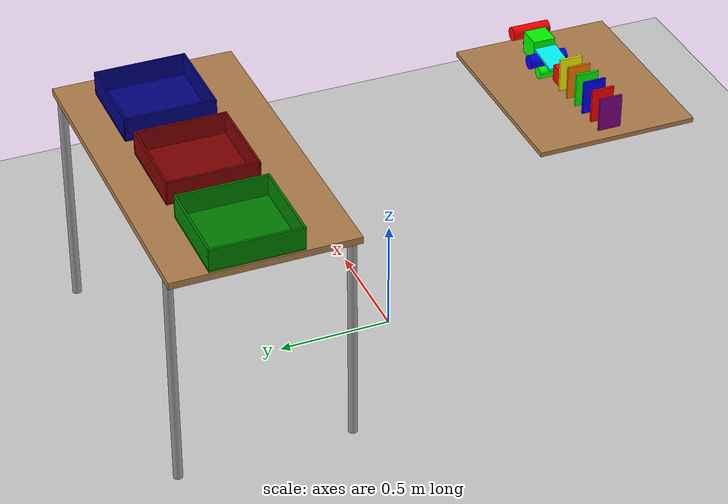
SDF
<sdf version="1.7">
 <world name="default">
  <light name="sun" type="directional">
   <pose>0 0 10 0 -0 0</pose>
   <diffuse>0.8 0.8 0.8 1</diffuse>
   <specular>0.2 0.2 0.2 1</specular>
   <attenuation>
    <range>1000</range>
    <constant>0.9</constant>
    <linear>0.01</linear>
    <quadratic>0.001</quadratic>
   </attenuation>
   <direction>-0.5 0.1 -0.9</direction>
   <spot><inner_angle>0</inner_angle><outer_angle>0</outer_angle><falloff>0</falloff></spot>
  </light>
  <model name="ground_plane">
   <static>1</static>
   <link name="link">
    <collision name="collision">
     <geometry><plane><normal>0 0 1</normal><size>100 100</size></plane></geometry>
     <surface><friction><ode><mu>100</mu><mu2>50</mu2></ode></friction></surface>
    </collision>
    <visual name="visual">
     <cast_shadows>0</cast_shadows>
     <geometry><plane><normal>0 0 1</normal><size>100 100</size></plane></geometry>
     <material>
      <script><uri>file://media/materials/scripts/gazebo.material</uri><name>Gazebo/Grey</name></script>
     </material>
    </visual>
   </link>
  </model>
  <gravity>0 0 -9.8</gravity>
  <magnetic_field>6e-06 2.3e-05 -4.2e-05</magnetic_field>
  <atmosphere type="adiabatic"/>
  <physics type="ode">
   <max_step_size>0.001</max_step_size>
   <real_time_factor>1</real_time_factor>
   <real_time_update_rate>1000</real_time_update_rate>
  </physics>
  <scene><ambient>0.4 0.4 0.4 1</ambient><background>0.7 0.7 0.7 1</background><shadows>1</shadows></scene>
  <audio><device>default</device></audio>
  <spherical_coordinates>
   <surface_model>EARTH_WGS84</surface_model>
   <latitude_deg>0</latitude_deg>
   <longitude_deg>0</longitude_deg>
   <elevation>0</elevation>
   <heading_deg>0</heading_deg>
  </spherical_coordinates>
  <model name="table">
   <static>1</static>
   <link name="link">
    <collision name="surface">
     <pose>0 0 1 0 -0 0</pose>
     <geometry><box><size>1.5 0.8 0.03</size></box></geometry>
     <surface>
      <friction><ode><mu>10</mu><mu2>5</mu2></ode></friction>
      <contact><ode><soft_cfm>0.0001</soft_cfm><soft_erp>0.4</soft_erp><kp>1e+06</kp><kd>10</kd></ode></contact>
     </surface>
    </collision>
    <visual name="visual1">
     <pose>0 0 1 0 -0 0</pose>
     <geometry><box><size>1.5 0.8 0.03</size></box></geometry>
     <material>
      <script><uri>file://media/materials/scripts/gazebo.material</uri><name>Gazebo/Wood</name></script>
     </material>
    </visual>
    <collision name="front_left_leg">
     <pose>0.68 0.38 0.5 0 -0 0</pose>
     <geometry><cylinder><radius>0.02</radius><length>1</length></cylinder></geometry>
    </collision>
    <visual name="front_left_leg">
     <pose>0.68 0.38 0.5 0 -0 0</pose>
     <geometry><cylinder><radius>0.02</radius><length>1</length></cylinder></geometry>
     <material>
      <script><uri>file://media/materials/scripts/gazebo.material</uri><name>Gazebo/Grey</name></script>
     </material>
    </visual>
    <collision name="front_right_leg">
     <pose>0.68 -0.38 0.5 0 -0 0</pose>
     <geometry><cylinder><radius>0.02</radius><length>1</length></cylinder></geometry>
    </collision>
    <visual name="front_right_leg">
     <pose>0.68 -0.38 0.5 0 -0 0</pose>
     <geometry><cylinder><radius>0.02</radius><length>1</length></cylinder></geometry>
     <material>
      <script><uri>file://media/materials/scripts/gazebo.material</uri><name>Gazebo/Grey</name></script>
     </material>
    </visual>
    <collision name="back_right_leg">
     <pose>-0.68 -0.38 0.5 0 -0 0</pose>
     <geometry><cylinder><radius>0.02</radius><length>1</length></cylinder></geometry>
    </collision>
    <visual name="back_right_leg">
     <pose>-0.68 -0.38 0.5 0 -0 0</pose>
     <geometry><cylinder><radius>0.02</radius><length>1</length></cylinder></geometry>
     <material>
      <script><uri>file://media/materials/scripts/gazebo.material</uri><name>Gazebo/Grey</name></script>
     </material>
    </visual>
    <collision name="back_left_leg">
     <pose>-0.68 0.38 0.5 0 -0 0</pose>
     <geometry><cylinder><radius>0.02</radius><length>1</length></cylinder></geometry>
    </collision>
    <visual name="back_left_leg">
     <pose>-0.68 0.38 0.5 0 -0 0</pose>
     <geometry><cylinder><radius>0.02</radius><length>1</length></cylinder></geometry>
     <material>
      <script><uri>file://media/materials/scripts/gazebo.material</uri><name>Gazebo/Grey</name></script>
     </material>
    </visual>
    <inertial>
     <inertia><ixx>1</ixx><ixy>0</ixy><ixz>0</ixz><iyy>1</iyy><iyz>0</iyz><izz>1</izz></inertia>
     <mass>50</mass>
    </inertial>
   </link>
   <pose>0.056083 0.801191 -1.2e-05 0 -0 2.5e-05</pose>
  </model>
  <plugin name="gazebo_link_attacher" filename="libgazebo_link_attacher.so"/>
  <plugin name="gazebo_ros_state" filename="libgazebo_ros_state.so">
   <namespace>/gazebo</namespace>
   <update_rate>100</update_rate>
  </plugin>
  <model name="cube_b">
   <link name="link_2">
    <inertial>
     <mass>2</mass>
     <inertia>
      <ixx>0.00083333</ixx>
      <ixy>0</ixy>
      <ixz>0</ixz>
      <iyy>0.00083333</iyy>
      <iyz>0</iyz>
      <izz>0.00083333</izz>
     </inertia>
    </inertial>
    <visual name="visual">
     <geometry><box><size>0.05 0.05 0.05</size></box></geometry>
     <material>
      <lighting>1</lighting>
      <script><uri>file://media/materials/scripts/gazebo.material</uri><name>Gazebo/Grey</name></script>
      <ambient>0 0 1 1</ambient>
      <diffuse>0 0 1 1</diffuse>
      <specular>0 0 0 1</specular>
      <emissive>0 0 0 1</emissive>
      <shader type="vertex"><normal_map>__default__</normal_map></shader>
     </material>
    </visual>
    <collision name="collision">
     <geometry><box><size>0.05 0.05 0.05</size></box></geometry>
     <surface>
      <friction>
       <ode><mu>0.8</mu><mu2>0.8</mu2><fdir1>0 0 0</fdir1><slip1>0</slip1><slip2>0</slip2></ode>
       <torsional>
        <coefficient>1</coefficient>
        <patch_radius>0</patch_radius>
        <surface_radius>0</surface_radius>
        <use_patch_radius>1</use_patch_radius>
        <ode><slip>0</slip></ode>
       </torsional>
      </friction>
      <bounce><restitution_coefficient>0</restitution_coefficient><threshold>1e+06</threshold></bounce>
      <contact>
       <collide_without_contact>0</collide_without_contact>
       <collide_without_contact_bitmask>1</collide_without_contact_bitmask>
       <collide_bitmask>1</collide_bitmask>
       <ode>
        <soft_cfm>0.0001</soft_cfm>
        <soft_erp>0.4</soft_erp>
        <kp>1e+06</kp>
        <kd>10</kd>
        <max_vel>0.01</max_vel>
        <min_depth>0</min_depth>
       </ode>
      </contact>
     </surface>
    </collision>
   </link>
   <static>0</static>
   <allow_auto_disable>0</allow_auto_disable>
   <pose>0.388328 -0.828649 1.01222 -1.56966 -0.004146 -0.004924</pose>
  </model>
  <model name="cube_g">
   <link name="link_2">
    <inertial>
     <mass>2</mass>
     <inertia>
      <ixx>0.00333333</ixx>
      <iyy>0.00333333</iyy>
      <izz>0.00333333</izz>
      <ixy>0</ixy>
      <ixz>0</ixz>
      <iyz>0</iyz>
     </inertia>
    </inertial>
    <visual name="visual">
     <geometry><box><size>0.1 0.1 0.1</size></box></geometry>
     <material>
      <lighting>1</lighting>
      <script><uri>file://media/materials/scripts/gazebo.material</uri><name>Gazebo/Grey</name></script>
      <ambient>0 1 0 1</ambient>
      <diffuse>0 1 0 1</diffuse>
      <specular>0 0 0 1</specular>
      <emissive>0 0 0 1</emissive>
      <shader type="vertex"><normal_map>__default__</normal_map></shader>
     </material>
    </visual>
    <collision name="collision">
     <geometry><box><size>0.1 0.1 0.1</size></box></geometry>
     <surface>
      <friction>
       <ode><mu>0.8</mu><mu2>0.8</mu2><fdir1>0 0 0</fdir1><slip1>0</slip1><slip2>0</slip2></ode>
       <torsional>
        <coefficient>1</coefficient>
        <patch_radius>0</patch_radius>
        <surface_radius>0</surface_radius>
        <use_patch_radius>1</use_patch_radius>
        <ode><slip>0</slip></ode>
       </torsional>
      </friction>
      <bounce><restitution_coefficient>0</restitution_coefficient><threshold>1e+06</threshold></bounce>
      <contact>
       <collide_without_contact>0</collide_without_contact>
       <collide_without_contact_bitmask>1</collide_without_contact_bitmask>
       <collide_bitmask>1</collide_bitmask>
       <ode>
        <soft_cfm>0.0001</soft_cfm>
        <soft_erp>0.4</soft_erp>
        <kp>1e+06</kp>
        <kd>10</kd>
        <max_vel>0.01</max_vel>
        <min_depth>0</min_depth>
       </ode>
      </contact>
     </surface>
    </collision>
   </link>
   <static>0</static>
   <allow_auto_disable>0</allow_auto_disable>
   <pose>0.312618 -0.829662 1.0369 0.001136 -0.004152 -0.00246</pose>
  </model>
  <model name="cube_r">
   <link name="link_2">
    <inertial>
     <mass>2</mass>
     <inertia>
      <ixx>0.001875</ixx>
      <ixy>0</ixy>
      <ixz>0</ixz>
      <iyy>0.001875</iyy>
      <iyz>0</iyz>
      <izz>0.001875</izz>
     </inertia>
    </inertial>
    <visual name="visual">
     <geometry><box><size>0.075 0.075 0.075</size></box></geometry>
     <material>
      <lighting>1</lighting>
      <script><uri>file://media/materials/scripts/gazebo.material</uri><name>Gazebo/Grey</name></script>
      <ambient>1 0 0 1</ambient>
      <diffuse>1 0 0 1</diffuse>
      <specular>0 0 0 1</specular>
      <emissive>0 0 0 1</emissive>
      <shader type="vertex"><normal_map>__default__</normal_map></shader>
     </material>
    </visual>
    <collision name="collision">
     <geometry><box><size>0.075 0.075 0.075</size></box></geometry>
     <surface>
      <friction>
       <ode><mu>0.8</mu><mu2>0.8</mu2><fdir1>0 0 0</fdir1><slip1>0</slip1><slip2>0</slip2></ode>
       <torsional>
        <coefficient>1</coefficient>
        <patch_radius>0</patch_radius>
        <surface_radius>0</surface_radius>
        <use_patch_radius>1</use_patch_radius>
        <ode><slip>0</slip></ode>
       </torsional>
      </friction>
      <bounce><restitution_coefficient>0</restitution_coefficient><threshold>1e+06</threshold></bounce>
      <contact>
       <collide_without_contact>0</collide_without_contact>
       <collide_without_contact_bitmask>1</collide_without_contact_bitmask>
       <collide_bitmask>1</collide_bitmask>
       <ode>
        <soft_cfm>0.0001</soft_cfm>
        <soft_erp>0.4</soft_erp>
        <kp>1e+06</kp>
        <kd>10</kd>
        <max_vel>0.01</max_vel>
        <min_depth>0</min_depth>
       </ode>
      </contact>
     </surface>
    </collision>
   </link>
   <static>0</static>
   <allow_auto_disable>0</allow_auto_disable>
   <pose>0.067838 -0.835652 1.02338 1.56664 -0.001151 1.56324</pose>
  </model>
  <model name="cylinder_r">
   <link name="link_0">
    <inertial>
     <mass>0.2</mass>
     <inertia>
      <ixx>0.0005267</ixx>
      <ixy>0</ixy>
      <ixz>0</ixz>
      <iyy>0.0005267</iyy>
      <iyz>0</iyz>
      <izz>9e-05</izz>
     </inertia>
    </inertial>
    <visual name="visual">
     <geometry><cylinder><radius>0.03</radius><length>0.17</length></cylinder></geometry>
     <material>
      <lighting>1</lighting>
      <script><uri>file://media/materials/scripts/gazebo.material</uri><name>Gazebo/Grey</name></script>
      <ambient>1 0 0 1</ambient>
      <diffuse>1 0 0 1</diffuse>
      <specular>0 0 0 1</specular>
      <emissive>0 0 0 1</emissive>
      <shader type="vertex"><normal_map>__default__</normal_map></shader>
     </material>
    </visual>
    <collision name="collision">
     <geometry><cylinder><radius>0.03</radius><length>0.17</length></cylinder></geometry>
     <surface>
      <friction>
       <ode><mu>0.5</mu><mu2>0.5</mu2><fdir1>0 0 0</fdir1><slip1>0</slip1><slip2>0</slip2></ode>
       <torsional>
        <coefficient>1</coefficient>
        <patch_radius>0</patch_radius>
        <surface_radius>0</surface_radius>
        <use_patch_radius>1</use_patch_radius>
        <ode><slip>0</slip></ode>
       </torsional>
      </friction>
      <bounce><restitution_coefficient>0</restitution_coefficient><threshold>1e+06</threshold></bounce>
      <contact>
       <collide_without_contact>0</collide_without_contact>
       <collide_without_contact_bitmask>1</collide_without_contact_bitmask>
       <collide_bitmask>1</collide_bitmask>
       <ode>
        <soft_cfm>0.0001</soft_cfm>
        <soft_erp>0.4</soft_erp>
        <kp>1e+06</kp>
        <kd>10</kd>
        <max_vel>0.01</max_vel>
        <min_depth>0</min_depth>
       </ode>
      </contact>
     </surface>
    </collision>
   </link>
   <static>0</static>
   <allow_auto_disable>0</allow_auto_disable>
   <pose>0.392515 -0.820703 1.06724 1.58093 1.46487 0.007625</pose>
  </model>
  <model name="cylinder_b">
   <link name="link_0">
    <inertial>
     <mass>0.2</mass>
     <inertia>
      <ixx>0.0005267</ixx>
      <ixy>0</ixy>
      <ixz>0</ixz>
      <iyy>0.0005267</iyy>
      <iyz>0</iyz>
      <izz>9e-05</izz>
     </inertia>
    </inertial>
    <visual name="visual">
     <geometry><cylinder><radius>0.03</radius><length>0.17</length></cylinder></geometry>
     <material>
      <lighting>1</lighting>
      <ambient>0 0 1 1</ambient>
      <diffuse>0 0 1 1</diffuse>
      <specular>0.1 0.1 0.1 1</specular>
      <emissive>0 0 0 1</emissive>
      <shader type="vertex"><normal_map>__default__</normal_map></shader>
     </material>
    </visual>
    <collision name="collision">
     <geometry><cylinder><radius>0.03</radius><length>0.17</length></cylinder></geometry>
     <surface>
      <friction>
       <ode><mu>0.4</mu><mu2>0.4</mu2><fdir1>0 0 0</fdir1><slip1>0</slip1><slip2>0</slip2></ode>
       <torsional>
        <coefficient>1</coefficient>
        <patch_radius>0</patch_radius>
        <surface_radius>0</surface_radius>
        <use_patch_radius>1</use_patch_radius>
        <ode><slip>0</slip></ode>
       </torsional>
      </friction>
      <bounce><restitution_coefficient>0</restitution_coefficient><threshold>1e+06</threshold></bounce>
      <contact>
       <collide_without_contact>0</collide_without_contact>
       <collide_without_contact_bitmask>1</collide_without_contact_bitmask>
       <collide_bitmask>1</collide_bitmask>
       <ode>
        <soft_cfm>0.0001</soft_cfm>
        <soft_erp>0.4</soft_erp>
        <kp>1e+06</kp>
        <kd>10</kd>
        <max_vel>0.01</max_vel>
        <min_depth>0</min_depth>
       </ode>
      </contact>
     </surface>
    </collision>
   </link>
   <static>0</static>
   <allow_auto_disable>0</allow_auto_disable>
   <pose>0.227969 -0.825681 1.01655 1.57197 -0.105722 -0.004549</pose>
  </model>
  <model name="cylinder_g">
   <link name="link_0">
    <inertial>
     <mass>0.2</mass>
     <inertia>
      <ixx>0.0005129</ixx>
      <ixy>0</ixy>
      <ixz>0</ixz>
      <iyy>0.0005129</iyy>
      <iyz>0</iyz>
      <izz>6.25e-05</izz>
     </inertia>
    </inertial>
    <visual name="visual">
     <geometry><cylinder><radius>0.025</radius><length>0.17</length></cylinder></geometry>
     <material>
      <lighting>1</lighting>
      <ambient>0 1 0 1</ambient>
      <diffuse>0 1 0 1</diffuse>
      <specular>0.1 0.1 0.1 1</specular>
      <emissive>0 0 0 1</emissive>
      <shader type="vertex"><normal_map>__default__</normal_map></shader>
     </material>
    </visual>
    <collision name="collision">
     <geometry><cylinder><radius>0.025</radius><length>0.17</length></cylinder></geometry>
     <surface>
      <friction>
       <ode><mu>0.5</mu><mu2>0.5</mu2><fdir1>0 0 0</fdir1><slip1>0</slip1><slip2>0</slip2></ode>
       <torsional>
        <coefficient>1</coefficient>
        <patch_radius>0</patch_radius>
        <surface_radius>0</surface_radius>
        <use_patch_radius>1</use_patch_radius>
        <ode><slip>0</slip></ode>
       </torsional>
      </friction>
      <bounce><restitution_coefficient>0</restitution_coefficient><threshold>1e+06</threshold></bounce>
      <contact>
       <collide_without_contact>0</collide_without_contact>
       <collide_without_contact_bitmask>1</collide_without_contact_bitmask>
       <collide_bitmask>1</collide_bitmask>
       <ode>
        <soft_cfm>0.0001</soft_cfm>
        <soft_erp>0.4</soft_erp>
        <kp>1e+06</kp>
        <kd>10</kd>
        <max_vel>0.01</max_vel>
        <min_depth>0</min_depth>
       </ode>
      </contact>
     </surface>
    </collision>
   </link>
   <static>0</static>
   <allow_auto_disable>0</allow_auto_disable>
   <pose>0.141493 -0.828477 1.01119 -1.57948 -1.44141 -3.13439</pose>
  </model>
  <model name="cuboid_r">
   <link name="link">
    <inertial>
     <mass>2</mass>
     <inertia>
      <ixx>0.001683</ixx>
      <iyy>0.003767</iyy>
      <izz>0.005417</izz>
      <ixy>0</ixy>
      <ixz>0</ixz>
      <iyz>0</iyz>
     </inertia>
    </inertial>
    <visual name="visual">
     <geometry><box><size>0.15 0.1 0.01</size></box></geometry>
     <material><ambient>1 0 0 1</ambient><diffuse>1 0 0 1</diffuse><specular>0.1 0.1 0.1 1</specular></material>
    </visual>
    <collision name="collision">
     <geometry><box><size>0.15 0.1 0.01</size></box></geometry>
     <surface>
      <friction>
       <ode><mu>0.6</mu><mu2>0.6</mu2><fdir1>0 0 0</fdir1><slip1>0</slip1><slip2>0</slip2></ode>
       <torsional>
        <coefficient>1</coefficient>
        <patch_radius>0</patch_radius>
        <surface_radius>0</surface_radius>
        <use_patch_radius>1</use_patch_radius>
        <ode><slip>0</slip></ode>
       </torsional>
      </friction>
      <bounce><restitution_coefficient>0</restitution_coefficient><threshold>1e+06</threshold></bounce>
      <contact>
       <collide_without_contact>0</collide_without_contact>
       <collide_without_contact_bitmask>1</collide_without_contact_bitmask>
       <collide_bitmask>1</collide_bitmask>
       <ode>
        <soft_cfm>0.0001</soft_cfm>
        <soft_erp>0.4</soft_erp>
        <kp>1e+06</kp>
        <kd>10</kd>
        <max_vel>0.01</max_vel>
        <min_depth>0</min_depth>
       </ode>
      </contact>
     </surface>
    </collision>
   </link>
   <static>0</static>
   <allow_auto_disable>0</allow_auto_disable>
   <pose>-0.246265 -0.849871 1.05956 -0.24941 -1.56643 -2.88056</pose>
  </model>
  <model name="cuboid_g">
   <link name="link">
    <inertial>
     <mass>2</mass>
     <inertia>
      <ixx>0.001683</ixx>
      <iyy>0.003767</iyy>
      <izz>0.005417</izz>
      <ixy>0</ixy>
      <ixz>0</ixz>
      <iyz>0</iyz>
     </inertia>
    </inertial>
    <visual name="visual">
     <geometry><box><size>0.15 0.1 0.01</size></box></geometry>
     <material><ambient>0 1 0 1</ambient><diffuse>0 1 0 1</diffuse><specular>0.1 0.1 0.1 1</specular></material>
    </visual>
    <collision name="collision">
     <geometry><box><size>0.15 0.1 0.01</size></box></geometry>
     <surface>
      <friction>
       <ode><mu>0.6</mu><mu2>0.6</mu2><fdir1>0 0 0</fdir1><slip1>0</slip1><slip2>0</slip2></ode>
       <torsional>
        <coefficient>1</coefficient>
        <patch_radius>0</patch_radius>
        <surface_radius>0</surface_radius>
        <use_patch_radius>1</use_patch_radius>
        <ode><slip>0</slip></ode>
       </torsional>
      </friction>
      <bounce><restitution_coefficient>0</restitution_coefficient><threshold>1e+06</threshold></bounce>
      <contact>
       <collide_without_contact>0</collide_without_contact>
       <collide_without_contact_bitmask>1</collide_without_contact_bitmask>
       <collide_bitmask>1</collide_bitmask>
       <ode>
        <soft_cfm>0.0001</soft_cfm>
        <soft_erp>0.4</soft_erp>
        <kp>1e+06</kp>
        <kd>10</kd>
        <max_vel>0.01</max_vel>
        <min_depth>0</min_depth>
       </ode>
      </contact>
     </surface>
    </collision>
   </link>
   <static>0</static>
   <allow_auto_disable>0</allow_auto_disable>
   <pose>-0.111665 -0.844364 1.06012 -0.261104 -1.56643 -2.88072</pose>
  </model>
  <model name="cuboid_b">
   <link name="link">
    <inertial>
     <mass>2</mass>
     <inertia>
      <ixx>0.001683</ixx>
      <iyy>0.003767</iyy>
      <izz>0.005417</izz>
      <ixy>0</ixy>
      <ixz>0</ixz>
      <iyz>0</iyz>
     </inertia>
    </inertial>
    <visual name="visual">
     <geometry><box><size>0.15 0.1 0.01</size></box></geometry>
     <material><ambient>0 0 1 1</ambient><diffuse>0 0 1 1</diffuse><specular>0.1 0.1 0.1 1</specular></material>
    </visual>
    <collision name="collision">
     <geometry><box><size>0.15 0.1 0.01</size></box></geometry>
     <surface>
      <friction>
       <ode><mu>0.6</mu><mu2>0.6</mu2><fdir1>0 0 0</fdir1><slip1>0</slip1><slip2>0</slip2></ode>
       <torsional>
        <coefficient>1</coefficient>
        <patch_radius>0</patch_radius>
        <surface_radius>0</surface_radius>
        <use_patch_radius>1</use_patch_radius>
        <ode><slip>0</slip></ode>
       </torsional>
      </friction>
      <bounce><restitution_coefficient>0</restitution_coefficient><threshold>1e+06</threshold></bounce>
      <contact>
       <collide_without_contact>0</collide_without_contact>
       <collide_without_contact_bitmask>1</collide_without_contact_bitmask>
       <collide_bitmask>1</collide_bitmask>
       <ode>
        <soft_cfm>0.0001</soft_cfm>
        <soft_erp>0.4</soft_erp>
        <kp>1e+06</kp>
        <kd>10</kd>
        <max_vel>0.01</max_vel>
        <min_depth>0</min_depth>
       </ode>
      </contact>
     </surface>
    </collision>
   </link>
   <static>0</static>
   <allow_auto_disable>0</allow_auto_disable>
   <pose>-0.176084 -0.846446 1.05985 -0.251553 -1.56643 -2.88059</pose>
  </model>
  <model name="cuboid_purple">
   <link name="link">
    <inertial>
     <mass>2</mass>
     <inertia>
      <ixx>0.001683</ixx>
      <iyy>0.003767</iyy>
      <izz>0.005417</izz>
      <ixy>0</ixy>
      <ixz>0</ixz>
      <iyz>0</iyz>
     </inertia>
    </inertial>
    <visual name="visual">
     <geometry><box><size>0.15 0.1 0.01</size></box></geometry>
     <material>
      <ambient>0.5 0 0.5 1</ambient>
      <diffuse>0.5 0 0.5 1</diffuse>
      <specular>0.1 0.1 0.1 1</specular>
     </material>
    </visual>
    <collision name="collision">
     <geometry><box><size>0.15 0.1 0.01</size></box></geometry>
     <surface>
      <friction>
       <ode><mu>0.6</mu><mu2>0.6</mu2><fdir1>0 0 0</fdir1><slip1>0</slip1><slip2>0</slip2></ode>
       <torsional>
        <coefficient>1</coefficient>
        <patch_radius>0</patch_radius>
        <surface_radius>0</surface_radius>
        <use_patch_radius>1</use_patch_radius>
        <ode><slip>0</slip></ode>
       </torsional>
      </friction>
      <bounce><restitution_coefficient>0</restitution_coefficient><threshold>1e+06</threshold></bounce>
      <contact>
       <collide_without_contact>0</collide_without_contact>
       <collide_without_contact_bitmask>1</collide_without_contact_bitmask>
       <collide_bitmask>1</collide_bitmask>
       <ode>
        <soft_cfm>0.0001</soft_cfm>
        <soft_erp>0.4</soft_erp>
        <kp>1e+06</kp>
        <kd>10</kd>
        <max_vel>0.01</max_vel>
        <min_depth>0</min_depth>
       </ode>
      </contact>
     </surface>
    </collision>
   </link>
   <static>0</static>
   <allow_auto_disable>0</allow_auto_disable>
   <pose>-0.318298 -0.851086 1.05926 -0.261101 -1.56643 -2.88072</pose>
  </model>
  <model name="cuboid_orange">
   <link name="link">
    <inertial>
     <mass>2</mass>
     <inertia>
      <ixx>0.001683</ixx>
      <iyy>0.003767</iyy>
      <izz>0.005417</izz>
      <ixy>0</ixy>
      <ixz>0</ixz>
      <iyz>0</iyz>
     </inertia>
    </inertial>
    <visual name="visual">
     <geometry><box><size>0.15 0.1 0.01</size></box></geometry>
     <material>
      <ambient>1 0.5 0 1</ambient>
      <diffuse>1 0.5 0 1</diffuse>
      <specular>0.1 0.1 0.1 1</specular>
     </material>
    </visual>
    <collision name="collision">
     <geometry><box><size>0.15 0.1 0.01</size></box></geometry>
     <surface>
      <friction>
       <ode><mu>0.6</mu><mu2>0.6</mu2><fdir1>0 0 0</fdir1><slip1>0</slip1><slip2>0</slip2></ode>
       <torsional>
        <coefficient>1</coefficient>
        <patch_radius>0</patch_radius>
        <surface_radius>0</surface_radius>
        <use_patch_radius>1</use_patch_radius>
        <ode><slip>0</slip></ode>
       </torsional>
      </friction>
      <bounce><restitution_coefficient>0</restitution_coefficient><threshold>1e+06</threshold></bounce>
      <contact>
       <collide_without_contact>0</collide_without_contact>
       <collide_without_contact_bitmask>1</collide_without_contact_bitmask>
       <collide_bitmask>1</collide_bitmask>
       <ode>
        <soft_cfm>0.0001</soft_cfm>
        <soft_erp>0.4</soft_erp>
        <kp>1e+06</kp>
        <kd>10</kd>
        <max_vel>0.01</max_vel>
        <min_depth>0</min_depth>
       </ode>
      </contact>
     </surface>
    </collision>
   </link>
   <static>0</static>
   <allow_auto_disable>0</allow_auto_disable>
   <pose>-0.045672 -0.838428 1.0604 -0.275353 -1.56643 -2.88089</pose>
  </model>
  <model name="cuboid_yellow">
   <link name="link">
    <inertial>
     <mass>2</mass>
     <inertia>
      <ixx>0.001683</ixx>
      <iyy>0.003767</iyy>
      <izz>0.005417</izz>
      <ixy>0</ixy>
      <ixz>0</ixz>
      <iyz>0</iyz>
     </inertia>
    </inertial>
    <visual name="visual">
     <geometry><box><size>0.15 0.1 0.01</size></box></geometry>
     <material><ambient>1 1 0 1</ambient><diffuse>1 1 0 1</diffuse><specular>0.1 0.1 0.1 1</specular></material>
    </visual>
    <collision name="collision">
     <geometry><box><size>0.15 0.1 0.01</size></box></geometry>
     <surface>
      <friction>
       <ode><mu>0.6</mu><mu2>0.6</mu2><fdir1>0 0 0</fdir1><slip1>0</slip1><slip2>0</slip2></ode>
       <torsional>
        <coefficient>1</coefficient>
        <patch_radius>0</patch_radius>
        <surface_radius>0</surface_radius>
        <use_patch_radius>1</use_patch_radius>
        <ode><slip>0</slip></ode>
       </torsional>
      </friction>
      <bounce><restitution_coefficient>0</restitution_coefficient><threshold>1e+06</threshold></bounce>
      <contact>
       <collide_without_contact>0</collide_without_contact>
       <collide_without_contact_bitmask>1</collide_without_contact_bitmask>
       <collide_bitmask>1</collide_bitmask>
       <ode>
        <soft_cfm>0.0001</soft_cfm>
        <soft_erp>0.4</soft_erp>
        <kp>1e+06</kp>
        <kd>10</kd>
        <max_vel>0.01</max_vel>
        <min_depth>0</min_depth>
       </ode>
      </contact>
     </surface>
    </collision>
   </link>
   <static>0</static>
   <allow_auto_disable>0</allow_auto_disable>
   <pose>0.02073 -0.834853 1.06068 -0.267657 -1.56643 -2.8808</pose>
  </model>
  <model name="cuboid_cyan">
   <link name="link">
    <inertial>
     <mass>2</mass>
     <inertia>
      <ixx>0.001683</ixx>
      <iyy>0.003767</iyy>
      <izz>0.005417</izz>
      <ixy>0</ixy>
      <ixz>0</ixz>
      <iyz>0</iyz>
     </inertia>
    </inertial>
    <visual name="visual">
     <geometry><box><size>0.15 0.1 0.01</size></box></geometry>
     <material><ambient>0 1 1 1</ambient><diffuse>0 1 1 1</diffuse><specular>0.1 0.1 0.1 1</specular></material>
    </visual>
    <collision name="collision">
     <geometry><box><size>0.15 0.1 0.01</size></box></geometry>
     <surface>
      <friction>
       <ode><mu>0.6</mu><mu2>0.6</mu2><fdir1>0 0 0</fdir1><slip1>0</slip1><slip2>0</slip2></ode>
       <torsional>
        <coefficient>1</coefficient>
        <patch_radius>0</patch_radius>
        <surface_radius>0</surface_radius>
        <use_patch_radius>1</use_patch_radius>
        <ode><slip>0</slip></ode>
       </torsional>
      </friction>
      <bounce><restitution_coefficient>0</restitution_coefficient><threshold>1e+06</threshold></bounce>
      <contact>
       <collide_without_contact>0</collide_without_contact>
       <collide_without_contact_bitmask>1</collide_without_contact_bitmask>
       <collide_bitmask>1</collide_bitmask>
       <ode>
        <soft_cfm>0.0001</soft_cfm>
        <soft_erp>0.4</soft_erp>
        <kp>1e+06</kp>
        <kd>10</kd>
        <max_vel>0.01</max_vel>
        <min_depth>0</min_depth>
       </ode>
      </contact>
     </surface>
    </collision>
   </link>
   <static>0</static>
   <allow_auto_disable>0</allow_auto_disable>
   <pose>0.180746 -0.830389 1.04612 -3.14134 -0.119659 0.00449</pose>
  </model>
  <model name="workspace">
   <link name="link">
    <inertial>
     <mass>100</mass>
     <inertia><ixx>6.02417</ixx><ixy>0</ixy><ixz>0</ixz><iyy>4.08667</iyy><iyz>0</iyz><izz>10.1042</izz></inertia>
    </inertial>
    <visual name="visual">
     <geometry><box><size>0.7 0.85 0.02</size></box></geometry>
     <material>
      <script><name>Gazebo/Wood</name><uri>file://media/materials/scripts/gazebo.material</uri></script>
      <shader type="pixel"/>
     </material>
    </visual>
    <collision name="collision">
     <geometry><box><size>0.7 0.85 0.02</size></box></geometry>
     <surface>
      <friction>
       <ode><mu>100</mu><mu2>50</mu2><fdir1>0 0 0</fdir1><slip1>0</slip1><slip2>0</slip2></ode>
       <torsional>
        <coefficient>1</coefficient>
        <patch_radius>0</patch_radius>
        <surface_radius>0</surface_radius>
        <use_patch_radius>1</use_patch_radius>
        <ode><slip>0</slip></ode>
       </torsional>
      </friction>
      <bounce><restitution_coefficient>0</restitution_coefficient><threshold>1e+06</threshold></bounce>
      <contact>
       <collide_without_contact>0</collide_without_contact>
       <collide_without_contact_bitmask>1</collide_without_contact_bitmask>
       <collide_bitmask>1</collide_bitmask>
       <ode>
        <soft_cfm>0.0001</soft_cfm>
        <soft_erp>0.2</soft_erp>
        <kp>1e+13</kp>
        <kd>10</kd>
        <max_vel>0.01</max_vel>
        <min_depth>0</min_depth>
       </ode>
       <bullet>
        <split_impulse>1</split_impulse>
        <split_impulse_penetration_threshold>-0.01</split_impulse_penetration_threshold>
        <soft_cfm>0</soft_cfm>
        <soft_erp>0.2</soft_erp>
        <kp>1e+13</kp>
        <kd>1</kd>
       </bullet>
      </contact>
     </surface>
    </collision>
   </link>
   <static>1</static>
   <pose>0.0416 -0.859914 0.975746 -0.004154 -0.001127 1.57039</pose>
  </model>
  <model name="tray_red">
   <static>1</static>
   <link name="link">
    <collision name="base_collision">
     <pose>0 0 0.01 0 -0 0</pose>
     <geometry><box><size>0.4 0.4 0.01</size></box></geometry>
     <surface><contact><ode><mu>50</mu><mu2>50</mu2></ode></contact></surface>
    </collision>
    <visual name="base_visual">
     <pose>0 0 0.01 0 -0 0</pose>
     <geometry><box><size>0.4 0.4 0.01</size></box></geometry>
     <material>
      <ambient>1 0 0 1</ambient>
      <diffuse>0.5 0 0 1</diffuse>
      <specular>0 0 0 1</specular>
      <emissive>0 0 0 1</emissive>
      <shininess>100</shininess>
     </material>
    </visual>
    <collision name="front_collision">
     <pose>0 0.195 0.06 0 -0 0</pose>
     <geometry><box><size>0.4 0.01 0.1</size></box></geometry>
    </collision>
    <visual name="front_visual">
     <pose>0 0.195 0.06 0 -0 0</pose>
     <geometry><box><size>0.4 0.01 0.1</size></box></geometry>
     <material>
      <ambient>1 0 0 1</ambient>
      <diffuse>0.5 0 0 1</diffuse>
      <specular>0 0 0 1</specular>
      <emissive>0 0 0 1</emissive>
     </material>
    </visual>
    <collision name="back_collision">
     <pose>0 -0.195 0.06 0 -0 0</pose>
     <geometry><box><size>0.4 0.01 0.1</size></box></geometry>
    </collision>
    <visual name="back_visual">
     <pose>0 -0.195 0.06 0 -0 0</pose>
     <geometry><box><size>0.4 0.01 0.1</size></box></geometry>
     <material>
      <ambient>1 0 0 1</ambient>
      <diffuse>0.5 0 0 1</diffuse>
      <specular>0 0 0 1</specular>
      <emissive>0 0 0 1</emissive>
     </material>
    </visual>
    <collision name="left_collision">
     <pose>0.195 0 0.06 0 -0 0</pose>
     <geometry><box><size>0.01 0.4 0.1</size></box></geometry>
    </collision>
    <visual name="left_visual">
     <pose>0.195 0 0.06 0 -0 0</pose>
     <geometry><box><size>0.01 0.4 0.1</size></box></geometry>
     <material>
      <ambient>1 0 0 1</ambient>
      <diffuse>0.5 0 0 1</diffuse>
      <specular>0 0 0 1</specular>
      <emissive>0 0 0 1</emissive>
     </material>
    </visual>
    <collision name="right_collision">
     <pose>-0.195 0 0.06 0 -0 0</pose>
     <geometry><box><size>0.01 0.4 0.1</size></box></geometry>
    </collision>
    <visual name="right_visual">
     <pose>-0.195 0 0.06 0 -0 0</pose>
     <geometry><box><size>0.01 0.4 0.1</size></box></geometry>
     <material>
      <ambient>1 0 0 1</ambient>
      <diffuse>0.5 0 0 1</diffuse>
      <specular>0 0 0 1</specular>
      <emissive>0 0 0 1</emissive>
     </material>
    </visual>
    <inertial>
     <inertia><ixx>1</ixx><ixy>0</ixy><ixz>0</ixz><iyy>1</iyy><iyz>0</iyz><izz>1</izz></inertia>
     <mass>1</mass>
    </inertial>
   </link>
   <pose>0.003367 0.836815 1.00999 0 -0 0</pose>
  </model>
  <model name="tray_green">
   <static>1</static>
   <link name="link">
    <collision name="base_collision">
     <pose>0 0 0.01 0 -0 0</pose>
     <geometry><box><size>0.4 0.4 0.01</size></box></geometry>
     <surface><contact><ode><mu>50</mu><mu2>50</mu2></ode></contact></surface>
    </collision>
    <visual name="base_visual">
     <pose>0 0 0.01 0 -0 0</pose>
     <geometry><box><size>0.4 0.4 0.01</size></box></geometry>
     <material><ambient>0 1 0 1</ambient><diffuse>0 0.5 0 1</diffuse></material>
    </visual>
    <collision name="front_collision">
     <pose>0 0.195 0.06 0 -0 0</pose>
     <geometry><box><size>0.4 0.01 0.1</size></box></geometry>
    </collision>
    <visual name="front_visual">
     <pose>0 0.195 0.06 0 -0 0</pose>
     <geometry><box><size>0.4 0.01 0.1</size></box></geometry>
     <material><ambient>0 1 0 1</ambient><diffuse>0 0.5 0 1</diffuse></material>
    </visual>
    <collision name="back_collision">
     <pose>0 -0.195 0.06 0 -0 0</pose>
     <geometry><box><size>0.4 0.01 0.1</size></box></geometry>
    </collision>
    <visual name="back_visual">
     <pose>0 -0.195 0.06 0 -0 0</pose>
     <geometry><box><size>0.4 0.01 0.1</size></box></geometry>
     <material><ambient>0 1 0 1</ambient><diffuse>0 0.5 0 1</diffuse></material>
    </visual>
    <collision name="left_collision">
     <pose>0.195 0 0.06 0 -0 0</pose>
     <geometry><box><size>0.01 0.4 0.1</size></box></geometry>
    </collision>
    <visual name="left_visual">
     <pose>0.195 0 0.06 0 -0 0</pose>
     <geometry><box><size>0.01 0.4 0.1</size></box></geometry>
     <material><ambient>0 1 0 1</ambient><diffuse>0 0.5 0 1</diffuse></material>
    </visual>
    <collision name="right_collision">
     <pose>-0.195 0 0.06 0 -0 0</pose>
     <geometry><box><size>0.01 0.4 0.1</size></box></geometry>
    </collision>
    <visual name="right_visual">
     <pose>-0.195 0 0.06 0 -0 0</pose>
     <geometry><box><size>0.01 0.4 0.1</size></box></geometry>
     <material><ambient>0 1 0 1</ambient><diffuse>0 0.5 0 1</diffuse></material>
    </visual>
    <inertial>
     <inertia><ixx>1</ixx><ixy>0</ixy><ixz>0</ixz><iyy>1</iyy><iyz>0</iyz><izz>1</izz></inertia>
     <mass>1</mass>
    </inertial>
   </link>
   <pose>-0.487214 0.834657 1.00999 0 -0 0</pose>
  </model>
  <model name="tray_blue">
   <static>1</static>
   <link name="link">
    <collision name="base_collision">
     <pose>0 0 0.01 0 -0 0</pose>
     <geometry><box><size>0.4 0.4 0.01</size></box></geometry>
     <surface><contact><ode><mu>50</mu><mu2>50</mu2></ode></contact></surface>
    </collision>
    <visual name="base_visual">
     <pose>0 0 0.01 0 -0 0</pose>
     <geometry><box><size>0.4 0.4 0.01</size></box></geometry>
     <material><ambient>0 0 1 1</ambient><diffuse>0 0 0.5 1</diffuse></material>
    </visual>
    <collision name="front_collision">
     <pose>0 0.195 0.06 0 -0 0</pose>
     <geometry><box><size>0.4 0.01 0.1</size></box></geometry>
    </collision>
    <visual name="front_visual">
     <pose>0 0.195 0.06 0 -0 0</pose>
     <geometry><box><size>0.4 0.01 0.1</size></box></geometry>
     <material><ambient>0 0 1 1</ambient><diffuse>0 0 0.5 1</diffuse></material>
    </visual>
    <collision name="back_collision">
     <pose>0 -0.195 0.06 0 -0 0</pose>
     <geometry><box><size>0.4 0.01 0.1</size></box></geometry>
    </collision>
    <visual name="back_visual">
     <pose>0 -0.195 0.06 0 -0 0</pose>
     <geometry><box><size>0.4 0.01 0.1</size></box></geometry>
     <material><ambient>0 0 1 1</ambient><diffuse>0 0 0.5 1</diffuse></material>
    </visual>
    <collision name="left_collision">
     <pose>0.195 0 0.06 0 -0 0</pose>
     <geometry><box><size>0.01 0.4 0.1</size></box></geometry>
    </collision>
    <visual name="left_visual">
     <pose>0.195 0 0.06 0 -0 0</pose>
     <geometry><box><size>0.01 0.4 0.1</size></box></geometry>
     <material><ambient>0 0 1 1</ambient><diffuse>0 0 0.5 1</diffuse></material>
    </visual>
    <collision name="right_collision">
     <pose>-0.195 0 0.06 0 -0 0</pose>
     <geometry><box><size>0.01 0.4 0.1</size></box></geometry>
    </collision>
    <visual name="right_visual">
     <pose>-0.195 0 0.06 0 -0 0</pose>
     <geometry><box><size>0.01 0.4 0.1</size></box></geometry>
     <material><ambient>0 0 1 1</ambient><diffuse>0 0 0.5 1</diffuse></material>
    </visual>
    <inertial>
     <inertia><ixx>1</ixx><ixy>0</ixy><ixz>0</ixz><iyy>1</iyy><iyz>0</iyz><izz>1</izz></inertia>
     <mass>1</mass>
    </inertial>
   </link>
   <pose>0.500589 0.844197 1.00999 0 -0 0</pose>
  </model>
 </world>
</sdf>
